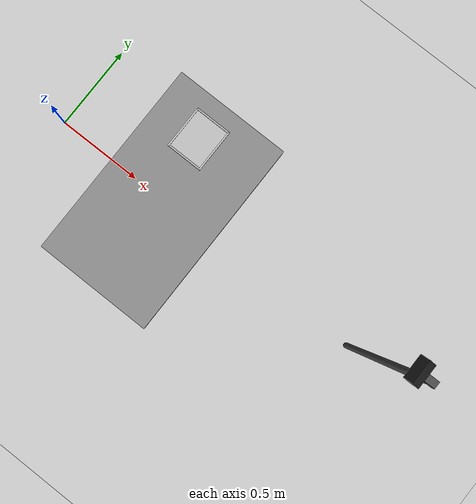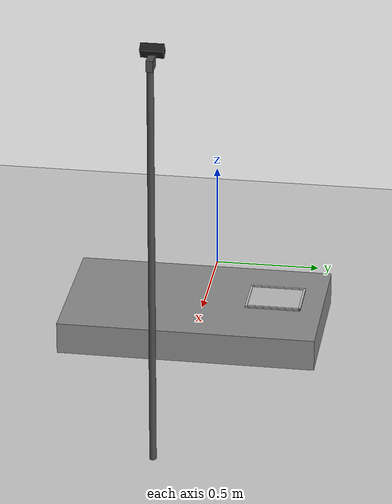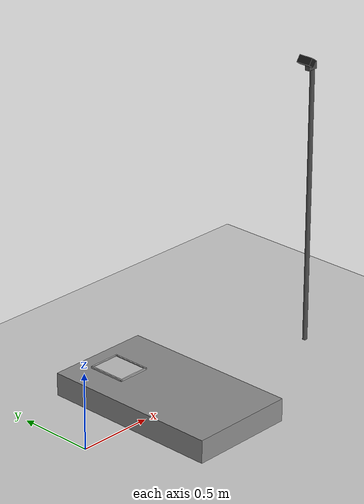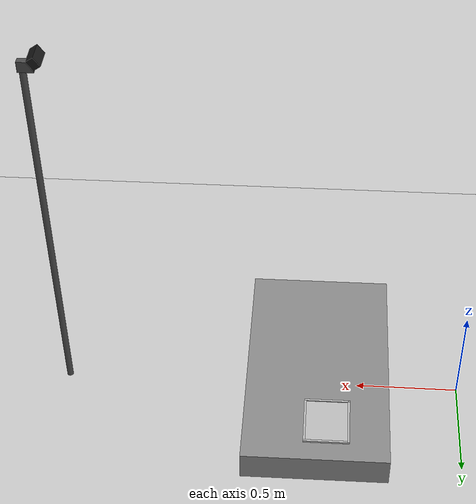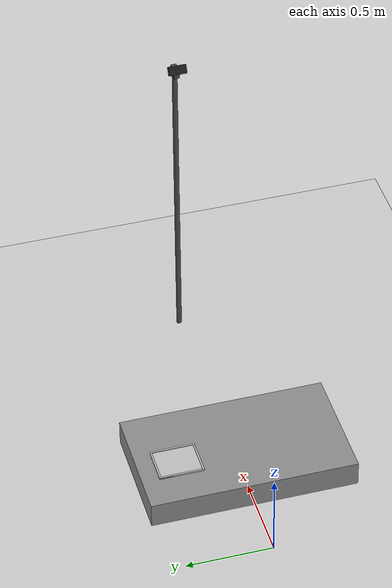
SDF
<?xml version="1.0"?>
<!-- Table, tray and camera match arm_bringup/config/scene.yaml (and the camera TF in arm_gz.launch.xml) -->
<sdf version="1.9">
  <world name="table_world">
    <physics name="1ms" type="ignored">
      <max_step_size>0.001</max_step_size>
      <real_time_factor>1.0</real_time_factor>
    </physics>
    <plugin filename="gz-sim-physics-system" name="gz::sim::systems::Physics" />
    <plugin filename="gz-sim-user-commands-system" name="gz::sim::systems::UserCommands" />
    <plugin filename="gz-sim-scene-broadcaster-system" name="gz::sim::systems::SceneBroadcaster" />
    <plugin filename="gz-sim-sensors-system" name="gz::sim::systems::Sensors">
      <render_engine>ogre2</render_engine>
    </plugin>

    <light type="directional" name="sun">
      <cast_shadows>true</cast_shadows>
      <pose>0 0 10 0 0 0</pose>
      <diffuse>0.8 0.8 0.8 1</diffuse>
      <specular>0.2 0.2 0.2 1</specular>
      <direction>-0.5 0.1 -0.9</direction>
    </light>

    <model name="ground_plane">
      <static>true</static>
      <link name="link">
        <collision name="collision">
          <geometry><plane><normal>0 0 1</normal><size>10 10</size></plane></geometry>
        </collision>
        <visual name="visual">
          <geometry><plane><normal>0 0 1</normal><size>10 10</size></plane></geometry>
          <material><ambient>0.8 0.8 0.8 1</ambient><diffuse>0.8 0.8 0.8 1</diffuse></material>
        </visual>
      </link>
    </model>

    <model name="table">
      <static>true</static>
      <pose>0.7 0 0.075 0 0 0</pose>
      <link name="link">
        <collision name="collision">
          <geometry><box><size>0.7 1.2 0.15</size></box></geometry>
        </collision>
        <visual name="visual">
          <geometry><box><size>0.7 1.2 0.15</size></box></geometry>
          <material><ambient>0.55 0.55 0.55 1</ambient><diffuse>0.55 0.55 0.55 1</diffuse></material>
        </visual>
      </link>
    </model>

    <!-- Shallow tray, 20 x 24 cm inside, 1 cm walls 1 cm high: boxes are packed Tetris-style -->
    <model name="tray">
      <static>true</static>
      <pose>0.65 0.37 0.15 0 0 0</pose>
      <link name="link">
        <collision name="floor"><pose>0 0 0.0025 0 0 0</pose><geometry><box><size>0.22 0.26 0.005</size></box></geometry></collision>
        <visual name="floor"><pose>0 0 0.0025 0 0 0</pose><geometry><box><size>0.22 0.26 0.005</size></box></geometry><material><ambient>0.75 0.75 0.75 1</ambient><diffuse>0.75 0.75 0.75 1</diffuse></material></visual>
        <collision name="wall_xn"><pose>-0.105 0 0.005 0 0 0</pose><geometry><box><size>0.01 0.26 0.01</size></box></geometry></collision>
        <visual name="wall_xn"><pose>-0.105 0 0.005 0 0 0</pose><geometry><box><size>0.01 0.26 0.01</size></box></geometry><material><ambient>0.75 0.75 0.75 1</ambient><diffuse>0.75 0.75 0.75 1</diffuse></material></visual>
        <collision name="wall_xp"><pose>0.105 0 0.005 0 0 0</pose><geometry><box><size>0.01 0.26 0.01</size></box></geometry></collision>
        <visual name="wall_xp"><pose>0.105 0 0.005 0 0 0</pose><geometry><box><size>0.01 0.26 0.01</size></box></geometry><material><ambient>0.75 0.75 0.75 1</ambient><diffuse>0.75 0.75 0.75 1</diffuse></material></visual>
        <collision name="wall_yn"><pose>0 -0.125 0.005 0 0 0</pose><geometry><box><size>0.22 0.01 0.01</size></box></geometry></collision>
        <visual name="wall_yn"><pose>0 -0.125 0.005 0 0 0</pose><geometry><box><size>0.22 0.01 0.01</size></box></geometry><material><ambient>0.75 0.75 0.75 1</ambient><diffuse>0.75 0.75 0.75 1</diffuse></material></visual>
        <collision name="wall_yp"><pose>0 0.125 0.005 0 0 0</pose><geometry><box><size>0.22 0.01 0.01</size></box></geometry></collision>
        <visual name="wall_yp"><pose>0 0.125 0.005 0 0 0</pose><geometry><box><size>0.22 0.01 0.01</size></box></geometry><material><ambient>0.75 0.75 0.75 1</ambient><diffuse>0.75 0.75 0.75 1</diffuse></material></visual>
      </link>
    </model>

    <!-- Depth camera on a stand across the table, looking down at it.
         Pose must match the camera_link static TF in arm_gz.launch.xml -->
    <model name="camera">
      <static>true</static>
      <pose>1.9 0 1.9 0 0.97 3.14159</pose>
      <link name="link">
        <visual name="body">
          <geometry><box><size>0.05 0.1 0.04</size></box></geometry>
          <material><ambient>0.1 0.1 0.1 1</ambient><diffuse>0.1 0.1 0.1 1</diffuse></material>
        </visual>
        <sensor name="rgbd_camera" type="rgbd_camera">
          <topic>camera</topic>
          <gz_frame_id>camera_link</gz_frame_id>
          <update_rate>5</update_rate>
          <always_on>true</always_on>
          <camera>
            <horizontal_fov>0.8</horizontal_fov>
            <image><width>640</width><height>480</height></image>
            <clip><near>0.1</near><far>5.0</far></clip>
          </camera>
        </sensor>
      </link>
    </model>
    <!-- Stand sits just behind the camera and below it, so it stays out of the view -->
    <model name="camera_stand">
      <static>true</static>
      <pose>1.96 0 0.92 0 0 0</pose>
      <link name="link">
        <visual name="visual">
          <geometry><cylinder><radius>0.015</radius><length>1.84</length></cylinder></geometry>
          <material><ambient>0.3 0.3 0.3 1</ambient><diffuse>0.3 0.3 0.3 1</diffuse></material>
        </visual>
        <!-- Bracket from the stand top to the back of the camera (behind the lens, out of view) -->
        <visual name="bracket">
          <pose>-0.015 0 0.94 0 0 0</pose>
          <geometry><box><size>0.07 0.03 0.05</size></box></geometry>
          <material><ambient>0.3 0.3 0.3 1</ambient><diffuse>0.3 0.3 0.3 1</diffuse></material>
        </visual>
      </link>
    </model>
  </world>
</sdf>
